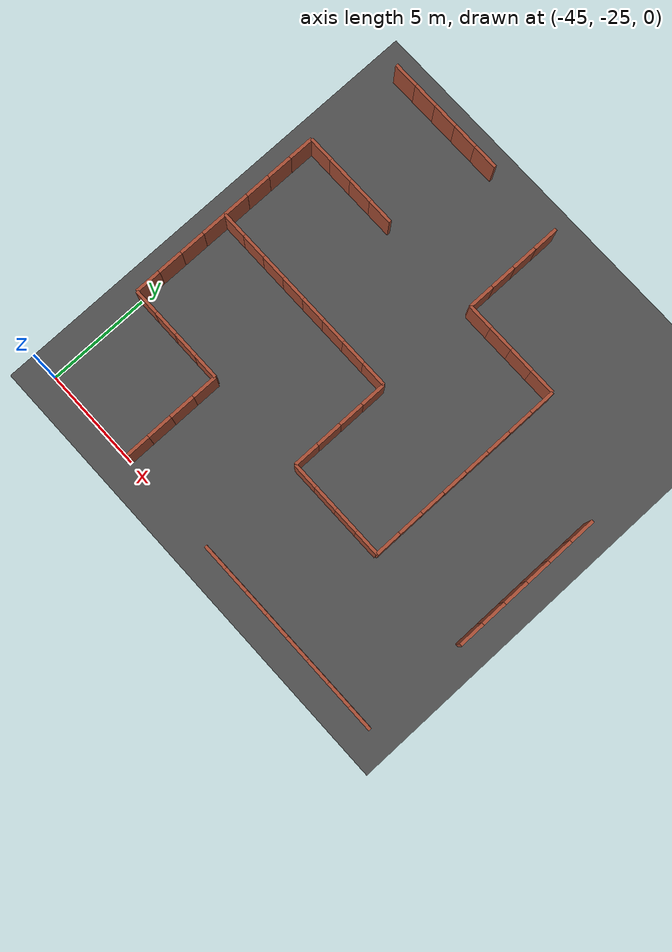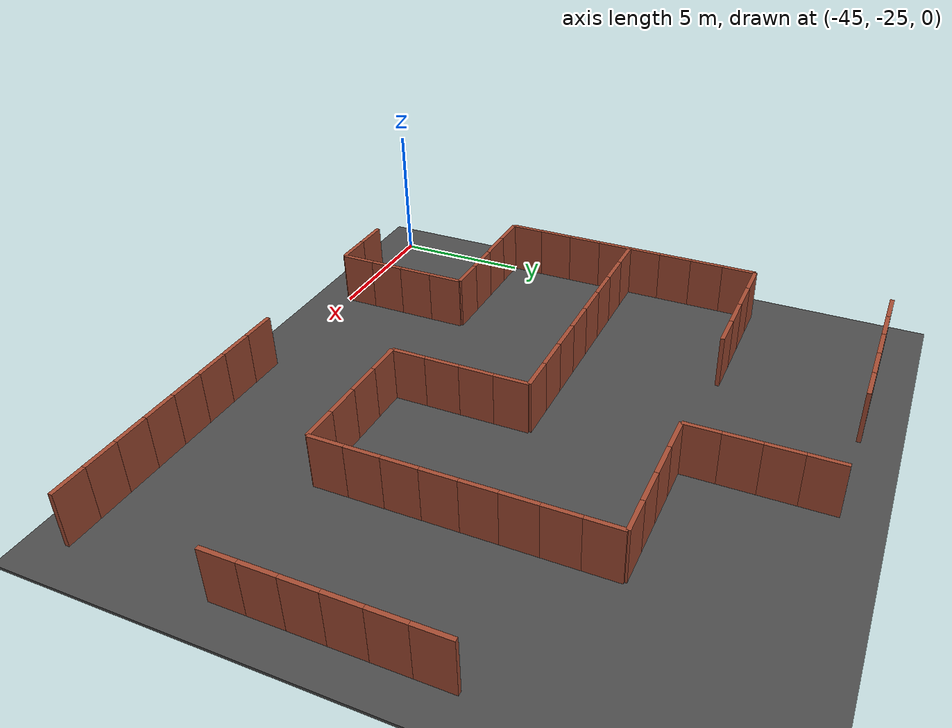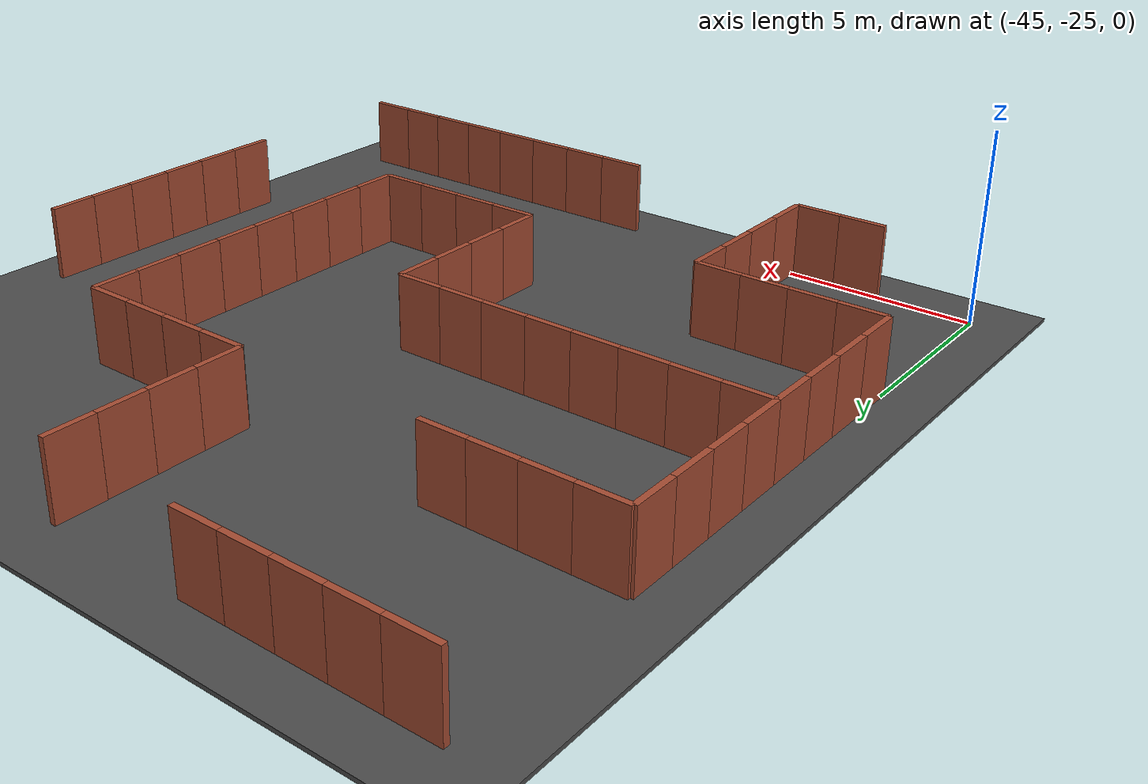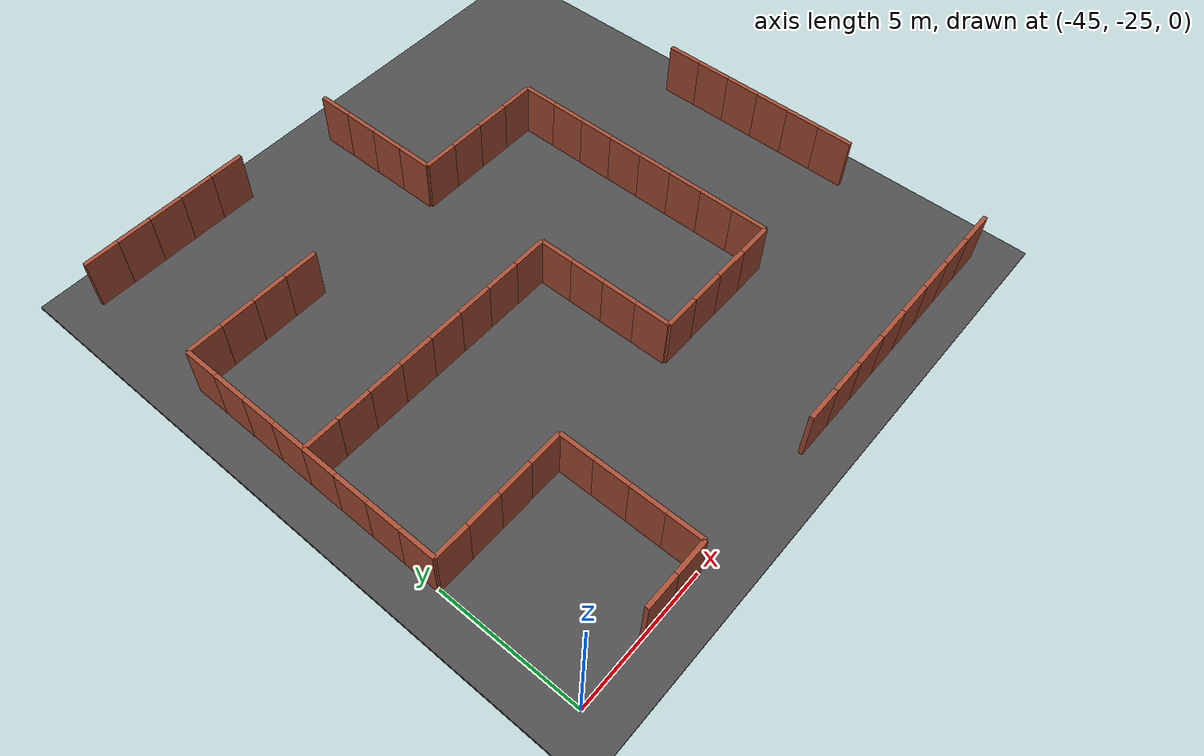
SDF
<sdf version="1.6">
 <world name="default">
  <model name="ground_plane">
   <static>1</static>
   <link name="link">
    <collision name="collision">
     <geometry><plane><normal>0 0 1</normal><size>100 100</size></plane></geometry>
     <surface><friction><ode><mu>100</mu><mu2>50</mu2></ode></friction></surface>
    </collision>
    <visual name="visual">
     <cast_shadows>0</cast_shadows>
     <geometry><plane><normal>0 0 1</normal><size>100 100</size></plane></geometry>
     <material>
      <script><uri>file://media/materials/scripts/gazebo.material</uri><name>Gazebo/Grey</name></script>
     </material>
    </visual>
   </link>
  </model>
  <model name="asphalt_plane">
   <static>1</static>
   <link name="link">
    <collision name="collision"><geometry><box><size>100 100 0.1</size></box></geometry></collision>
    <visual name="visual">
     <cast_shadows>0</cast_shadows>
     <geometry><box><size>100 100 0.1</size></box></geometry>
     <material>
      <script>
       <uri>model://asphalt_plane/materials/scripts</uri>
       <uri>model://asphalt_plane/materials/textures</uri>
       <name>vrc/asphalt</name>
      </script>
     </material>
    </visual>
   </link>
  </model>
  <model name="brick_wall_2_12_vertical1">
   <pose>-44.375 -20 0 0 -0 0</pose>
   <link name="Wall_0">
    <collision name="Wall_0_Collision">
     <geometry><box><size>1.25 0.15 2</size></box></geometry>
     <pose>0 0 1 0 -0 0</pose>
    </collision>
    <visual name="Wall_0_Visual">
     <pose>0 0 1 0 -0 0</pose>
     <geometry><box><size>1.25 0.15 2</size></box></geometry>
     <material>
      <script><uri>file://media/materials/scripts/gazebo.material</uri><name>Gazebo/Bricks</name></script>
      <ambient>1 1 1 1</ambient>
     </material>
     <meta><layer>0</layer></meta>
    </visual>
   </link>
   <static>1</static>
  </model>
  <model name="brick_wall_2_12_horizontal1">
   <pose>-45 -19.375 0 0 -0 1.5708</pose>
   <link name="Wall_0">
    <collision name="Wall_0_Collision">
     <geometry><box><size>1.25 0.15 2</size></box></geometry>
     <pose>0 0 1 0 -0 0</pose>
    </collision>
    <visual name="Wall_0_Visual">
     <pose>0 0 1 0 -0 0</pose>
     <geometry><box><size>1.25 0.15 2</size></box></geometry>
     <material>
      <script><uri>file://media/materials/scripts/gazebo.material</uri><name>Gazebo/Bricks</name></script>
      <ambient>1 1 1 1</ambient>
     </material>
     <meta><layer>0</layer></meta>
    </visual>
   </link>
   <static>1</static>
  </model>
  <model name="brick_wall_2_13_horizontal1">
   <pose>-45 -16.875 0 0 -0 1.5708</pose>
   <link name="Wall_0">
    <collision name="Wall_0_Collision">
     <geometry><box><size>1.25 0.15 2</size></box></geometry>
     <pose>0 0 1 0 -0 0</pose>
    </collision>
    <visual name="Wall_0_Visual">
     <pose>0 0 1 0 -0 0</pose>
     <geometry><box><size>1.25 0.15 2</size></box></geometry>
     <material>
      <script><uri>file://media/materials/scripts/gazebo.material</uri><name>Gazebo/Bricks</name></script>
      <ambient>1 1 1 1</ambient>
     </material>
     <meta><layer>0</layer></meta>
    </visual>
   </link>
   <static>1</static>
  </model>
  <model name="brick_wall_2_13_horizontal2">
   <pose>-45 -18.125 0 0 -0 1.5708</pose>
   <link name="Wall_0">
    <collision name="Wall_0_Collision">
     <geometry><box><size>1.25 0.15 2</size></box></geometry>
     <pose>0 0 1 0 -0 0</pose>
    </collision>
    <visual name="Wall_0_Visual">
     <pose>0 0 1 0 -0 0</pose>
     <geometry><box><size>1.25 0.15 2</size></box></geometry>
     <material>
      <script><uri>file://media/materials/scripts/gazebo.material</uri><name>Gazebo/Bricks</name></script>
      <ambient>1 1 1 1</ambient>
     </material>
     <meta><layer>0</layer></meta>
    </visual>
   </link>
   <static>1</static>
  </model>
  <model name="brick_wall_2_14_vertical1">
   <pose>-44.375 -15 0 0 -0 0</pose>
   <link name="Wall_0">
    <collision name="Wall_0_Collision">
     <geometry><box><size>1.25 0.15 2</size></box></geometry>
     <pose>0 0 1 0 -0 0</pose>
    </collision>
    <visual name="Wall_0_Visual">
     <pose>0 0 1 0 -0 0</pose>
     <geometry><box><size>1.25 0.15 2</size></box></geometry>
     <material>
      <script><uri>file://media/materials/scripts/gazebo.material</uri><name>Gazebo/Bricks</name></script>
      <ambient>1 1 1 1</ambient>
     </material>
     <meta><layer>0</layer></meta>
    </visual>
   </link>
   <static>1</static>
  </model>
  <model name="brick_wall_2_14_horizontal1">
   <pose>-45 -14.375 0 0 -0 1.5708</pose>
   <link name="Wall_0">
    <collision name="Wall_0_Collision">
     <geometry><box><size>1.25 0.15 2</size></box></geometry>
     <pose>0 0 1 0 -0 0</pose>
    </collision>
    <visual name="Wall_0_Visual">
     <pose>0 0 1 0 -0 0</pose>
     <geometry><box><size>1.25 0.15 2</size></box></geometry>
     <material>
      <script><uri>file://media/materials/scripts/gazebo.material</uri><name>Gazebo/Bricks</name></script>
      <ambient>1 1 1 1</ambient>
     </material>
     <meta><layer>0</layer></meta>
    </visual>
   </link>
   <static>1</static>
  </model>
  <model name="brick_wall_2_14_horizontal2">
   <pose>-45 -15.625 0 0 -0 1.5708</pose>
   <link name="Wall_0">
    <collision name="Wall_0_Collision">
     <geometry><box><size>1.25 0.15 2</size></box></geometry>
     <pose>0 0 1 0 -0 0</pose>
    </collision>
    <visual name="Wall_0_Visual">
     <pose>0 0 1 0 -0 0</pose>
     <geometry><box><size>1.25 0.15 2</size></box></geometry>
     <material>
      <script><uri>file://media/materials/scripts/gazebo.material</uri><name>Gazebo/Bricks</name></script>
      <ambient>1 1 1 1</ambient>
     </material>
     <meta><layer>0</layer></meta>
    </visual>
   </link>
   <static>1</static>
  </model>
  <model name="brick_wall_2_15_horizontal1">
   <pose>-45 -11.875 0 0 -0 1.5708</pose>
   <link name="Wall_0">
    <collision name="Wall_0_Collision">
     <geometry><box><size>1.25 0.15 2</size></box></geometry>
     <pose>0 0 1 0 -0 0</pose>
    </collision>
    <visual name="Wall_0_Visual">
     <pose>0 0 1 0 -0 0</pose>
     <geometry><box><size>1.25 0.15 2</size></box></geometry>
     <material>
      <script><uri>file://media/materials/scripts/gazebo.material</uri><name>Gazebo/Bricks</name></script>
      <ambient>1 1 1 1</ambient>
     </material>
     <meta><layer>0</layer></meta>
    </visual>
   </link>
   <static>1</static>
  </model>
  <model name="brick_wall_2_15_horizontal2">
   <pose>-45 -13.125 0 0 -0 1.5708</pose>
   <link name="Wall_0">
    <collision name="Wall_0_Collision">
     <geometry><box><size>1.25 0.15 2</size></box></geometry>
     <pose>0 0 1 0 -0 0</pose>
    </collision>
    <visual name="Wall_0_Visual">
     <pose>0 0 1 0 -0 0</pose>
     <geometry><box><size>1.25 0.15 2</size></box></geometry>
     <material>
      <script><uri>file://media/materials/scripts/gazebo.material</uri><name>Gazebo/Bricks</name></script>
      <ambient>1 1 1 1</ambient>
     </material>
     <meta><layer>0</layer></meta>
    </visual>
   </link>
   <static>1</static>
  </model>
  <model name="brick_wall_2_16_vertical1">
   <pose>-44.375 -10 0 0 -0 0</pose>
   <link name="Wall_0">
    <collision name="Wall_0_Collision">
     <geometry><box><size>1.25 0.15 2</size></box></geometry>
     <pose>0 0 1 0 -0 0</pose>
    </collision>
    <visual name="Wall_0_Visual">
     <pose>0 0 1 0 -0 0</pose>
     <geometry><box><size>1.25 0.15 2</size></box></geometry>
     <material>
      <script><uri>file://media/materials/scripts/gazebo.material</uri><name>Gazebo/Bricks</name></script>
      <ambient>1 1 1 1</ambient>
     </material>
     <meta><layer>0</layer></meta>
    </visual>
   </link>
   <static>1</static>
  </model>
  <model name="brick_wall_2_16_horizontal2">
   <pose>-45 -10.625 0 0 -0 1.5708</pose>
   <link name="Wall_0">
    <collision name="Wall_0_Collision">
     <geometry><box><size>1.25 0.15 2</size></box></geometry>
     <pose>0 0 1 0 -0 0</pose>
    </collision>
    <visual name="Wall_0_Visual">
     <pose>0 0 1 0 -0 0</pose>
     <geometry><box><size>1.25 0.15 2</size></box></geometry>
     <material>
      <script><uri>file://media/materials/scripts/gazebo.material</uri><name>Gazebo/Bricks</name></script>
      <ambient>1 1 1 1</ambient>
     </material>
     <meta><layer>0</layer></meta>
    </visual>
   </link>
   <static>1</static>
  </model>
  <model name="brick_wall_2_18_vertical1">
   <pose>-44.375 -5 0 0 -0 0</pose>
   <link name="Wall_0">
    <collision name="Wall_0_Collision">
     <geometry><box><size>1.25 0.15 2</size></box></geometry>
     <pose>0 0 1 0 -0 0</pose>
    </collision>
    <visual name="Wall_0_Visual">
     <pose>0 0 1 0 -0 0</pose>
     <geometry><box><size>1.25 0.15 2</size></box></geometry>
     <material>
      <script><uri>file://media/materials/scripts/gazebo.material</uri><name>Gazebo/Bricks</name></script>
      <ambient>1 1 1 1</ambient>
     </material>
     <meta><layer>0</layer></meta>
    </visual>
   </link>
   <static>1</static>
  </model>
  <model name="brick_wall_3_10_vertical1">
   <pose>-41.875 -25 0 0 -0 0</pose>
   <link name="Wall_0">
    <collision name="Wall_0_Collision">
     <geometry><box><size>1.25 0.15 2</size></box></geometry>
     <pose>0 0 1 0 -0 0</pose>
    </collision>
    <visual name="Wall_0_Visual">
     <pose>0 0 1 0 -0 0</pose>
     <geometry><box><size>1.25 0.15 2</size></box></geometry>
     <material>
      <script><uri>file://media/materials/scripts/gazebo.material</uri><name>Gazebo/Bricks</name></script>
      <ambient>1 1 1 1</ambient>
     </material>
     <meta><layer>0</layer></meta>
    </visual>
   </link>
   <static>1</static>
  </model>
  <model name="brick_wall_3_12_vertical1">
   <pose>-41.875 -20 0 0 -0 0</pose>
   <link name="Wall_0">
    <collision name="Wall_0_Collision">
     <geometry><box><size>1.25 0.15 2</size></box></geometry>
     <pose>0 0 1 0 -0 0</pose>
    </collision>
    <visual name="Wall_0_Visual">
     <pose>0 0 1 0 -0 0</pose>
     <geometry><box><size>1.25 0.15 2</size></box></geometry>
     <material>
      <script><uri>file://media/materials/scripts/gazebo.material</uri><name>Gazebo/Bricks</name></script>
      <ambient>1 1 1 1</ambient>
     </material>
     <meta><layer>0</layer></meta>
    </visual>
   </link>
   <static>1</static>
  </model>
  <model name="brick_wall_3_12_vertical2">
   <pose>-43.125 -20 0 0 -0 0</pose>
   <link name="Wall_0">
    <collision name="Wall_0_Collision">
     <geometry><box><size>1.25 0.15 2</size></box></geometry>
     <pose>0 0 1 0 -0 0</pose>
    </collision>
    <visual name="Wall_0_Visual">
     <pose>0 0 1 0 -0 0</pose>
     <geometry><box><size>1.25 0.15 2</size></box></geometry>
     <material>
      <script><uri>file://media/materials/scripts/gazebo.material</uri><name>Gazebo/Bricks</name></script>
      <ambient>1 1 1 1</ambient>
     </material>
     <meta><layer>0</layer></meta>
    </visual>
   </link>
   <static>1</static>
  </model>
  <model name="brick_wall_3_14_vertical1">
   <pose>-41.875 -15 0 0 -0 0</pose>
   <link name="Wall_0">
    <collision name="Wall_0_Collision">
     <geometry><box><size>1.25 0.15 2</size></box></geometry>
     <pose>0 0 1 0 -0 0</pose>
    </collision>
    <visual name="Wall_0_Visual">
     <pose>0 0 1 0 -0 0</pose>
     <geometry><box><size>1.25 0.15 2</size></box></geometry>
     <material>
      <script><uri>file://media/materials/scripts/gazebo.material</uri><name>Gazebo/Bricks</name></script>
      <ambient>1 1 1 1</ambient>
     </material>
     <meta><layer>0</layer></meta>
    </visual>
   </link>
   <static>1</static>
  </model>
  <model name="brick_wall_3_14_vertical2">
   <pose>-43.125 -15 0 0 -0 0</pose>
   <link name="Wall_0">
    <collision name="Wall_0_Collision">
     <geometry><box><size>1.25 0.15 2</size></box></geometry>
     <pose>0 0 1 0 -0 0</pose>
    </collision>
    <visual name="Wall_0_Visual">
     <pose>0 0 1 0 -0 0</pose>
     <geometry><box><size>1.25 0.15 2</size></box></geometry>
     <material>
      <script><uri>file://media/materials/scripts/gazebo.material</uri><name>Gazebo/Bricks</name></script>
      <ambient>1 1 1 1</ambient>
     </material>
     <meta><layer>0</layer></meta>
    </visual>
   </link>
   <static>1</static>
  </model>
  <model name="brick_wall_3_16_vertical1">
   <pose>-41.875 -10 0 0 -0 0</pose>
   <link name="Wall_0">
    <collision name="Wall_0_Collision">
     <geometry><box><size>1.25 0.15 2</size></box></geometry>
     <pose>0 0 1 0 -0 0</pose>
    </collision>
    <visual name="Wall_0_Visual">
     <pose>0 0 1 0 -0 0</pose>
     <geometry><box><size>1.25 0.15 2</size></box></geometry>
     <material>
      <script><uri>file://media/materials/scripts/gazebo.material</uri><name>Gazebo/Bricks</name></script>
      <ambient>1 1 1 1</ambient>
     </material>
     <meta><layer>0</layer></meta>
    </visual>
   </link>
   <static>1</static>
  </model>
  <model name="brick_wall_3_16_vertical2">
   <pose>-43.125 -10 0 0 -0 0</pose>
   <link name="Wall_0">
    <collision name="Wall_0_Collision">
     <geometry><box><size>1.25 0.15 2</size></box></geometry>
     <pose>0 0 1 0 -0 0</pose>
    </collision>
    <visual name="Wall_0_Visual">
     <pose>0 0 1 0 -0 0</pose>
     <geometry><box><size>1.25 0.15 2</size></box></geometry>
     <material>
      <script><uri>file://media/materials/scripts/gazebo.material</uri><name>Gazebo/Bricks</name></script>
      <ambient>1 1 1 1</ambient>
     </material>
     <meta><layer>0</layer></meta>
    </visual>
   </link>
   <static>1</static>
  </model>
  <model name="brick_wall_3_18_vertical1">
   <pose>-41.875 -5 0 0 -0 0</pose>
   <link name="Wall_0">
    <collision name="Wall_0_Collision">
     <geometry><box><size>1.25 0.15 2</size></box></geometry>
     <pose>0 0 1 0 -0 0</pose>
    </collision>
    <visual name="Wall_0_Visual">
     <pose>0 0 1 0 -0 0</pose>
     <geometry><box><size>1.25 0.15 2</size></box></geometry>
     <material>
      <script><uri>file://media/materials/scripts/gazebo.material</uri><name>Gazebo/Bricks</name></script>
      <ambient>1 1 1 1</ambient>
     </material>
     <meta><layer>0</layer></meta>
    </visual>
   </link>
   <static>1</static>
  </model>
  <model name="brick_wall_3_18_vertical2">
   <pose>-43.125 -5 0 0 -0 0</pose>
   <link name="Wall_0">
    <collision name="Wall_0_Collision">
     <geometry><box><size>1.25 0.15 2</size></box></geometry>
     <pose>0 0 1 0 -0 0</pose>
    </collision>
    <visual name="Wall_0_Visual">
     <pose>0 0 1 0 -0 0</pose>
     <geometry><box><size>1.25 0.15 2</size></box></geometry>
     <material>
      <script><uri>file://media/materials/scripts/gazebo.material</uri><name>Gazebo/Bricks</name></script>
      <ambient>1 1 1 1</ambient>
     </material>
     <meta><layer>0</layer></meta>
    </visual>
   </link>
   <static>1</static>
  </model>
  <model name="brick_wall_4_10_vertical2">
   <pose>-40.625 -25 0 0 -0 0</pose>
   <link name="Wall_0">
    <collision name="Wall_0_Collision">
     <geometry><box><size>1.25 0.15 2</size></box></geometry>
     <pose>0 0 1 0 -0 0</pose>
    </collision>
    <visual name="Wall_0_Visual">
     <pose>0 0 1 0 -0 0</pose>
     <geometry><box><size>1.25 0.15 2</size></box></geometry>
     <material>
      <script><uri>file://media/materials/scripts/gazebo.material</uri><name>Gazebo/Bricks</name></script>
      <ambient>1 1 1 1</ambient>
     </material>
     <meta><layer>0</layer></meta>
    </visual>
   </link>
   <static>1</static>
  </model>
  <model name="brick_wall_4_10_horizontal1">
   <pose>-40 -24.375 0 0 -0 1.5708</pose>
   <link name="Wall_0">
    <collision name="Wall_0_Collision">
     <geometry><box><size>1.25 0.15 2</size></box></geometry>
     <pose>0 0 1 0 -0 0</pose>
    </collision>
    <visual name="Wall_0_Visual">
     <pose>0 0 1 0 -0 0</pose>
     <geometry><box><size>1.25 0.15 2</size></box></geometry>
     <material>
      <script><uri>file://media/materials/scripts/gazebo.material</uri><name>Gazebo/Bricks</name></script>
      <ambient>1 1 1 1</ambient>
     </material>
     <meta><layer>0</layer></meta>
    </visual>
   </link>
   <static>1</static>
  </model>
  <model name="brick_wall_4_11_horizontal1">
   <pose>-40 -21.875 0 0 -0 1.5708</pose>
   <link name="Wall_0">
    <collision name="Wall_0_Collision">
     <geometry><box><size>1.25 0.15 2</size></box></geometry>
     <pose>0 0 1 0 -0 0</pose>
    </collision>
    <visual name="Wall_0_Visual">
     <pose>0 0 1 0 -0 0</pose>
     <geometry><box><size>1.25 0.15 2</size></box></geometry>
     <material>
      <script><uri>file://media/materials/scripts/gazebo.material</uri><name>Gazebo/Bricks</name></script>
      <ambient>1 1 1 1</ambient>
     </material>
     <meta><layer>0</layer></meta>
    </visual>
   </link>
   <static>1</static>
  </model>
  <model name="brick_wall_4_11_horizontal2">
   <pose>-40 -23.125 0 0 -0 1.5708</pose>
   <link name="Wall_0">
    <collision name="Wall_0_Collision">
     <geometry><box><size>1.25 0.15 2</size></box></geometry>
     <pose>0 0 1 0 -0 0</pose>
    </collision>
    <visual name="Wall_0_Visual">
     <pose>0 0 1 0 -0 0</pose>
     <geometry><box><size>1.25 0.15 2</size></box></geometry>
     <material>
      <script><uri>file://media/materials/scripts/gazebo.material</uri><name>Gazebo/Bricks</name></script>
      <ambient>1 1 1 1</ambient>
     </material>
     <meta><layer>0</layer></meta>
    </visual>
   </link>
   <static>1</static>
  </model>
  <model name="brick_wall_4_12_vertical2">
   <pose>-40.625 -20 0 0 -0 0</pose>
   <link name="Wall_0">
    <collision name="Wall_0_Collision">
     <geometry><box><size>1.25 0.15 2</size></box></geometry>
     <pose>0 0 1 0 -0 0</pose>
    </collision>
    <visual name="Wall_0_Visual">
     <pose>0 0 1 0 -0 0</pose>
     <geometry><box><size>1.25 0.15 2</size></box></geometry>
     <material>
      <script><uri>file://media/materials/scripts/gazebo.material</uri><name>Gazebo/Bricks</name></script>
      <ambient>1 1 1 1</ambient>
     </material>
     <meta><layer>0</layer></meta>
    </visual>
   </link>
   <static>1</static>
  </model>
  <model name="brick_wall_4_12_horizontal2">
   <pose>-40 -20.625 0 0 -0 1.5708</pose>
   <link name="Wall_0">
    <collision name="Wall_0_Collision">
     <geometry><box><size>1.25 0.15 2</size></box></geometry>
     <pose>0 0 1 0 -0 0</pose>
    </collision>
    <visual name="Wall_0_Visual">
     <pose>0 0 1 0 -0 0</pose>
     <geometry><box><size>1.25 0.15 2</size></box></geometry>
     <material>
      <script><uri>file://media/materials/scripts/gazebo.material</uri><name>Gazebo/Bricks</name></script>
      <ambient>1 1 1 1</ambient>
     </material>
     <meta><layer>0</layer></meta>
    </visual>
   </link>
   <static>1</static>
  </model>
  <model name="brick_wall_4_14_vertical1">
   <pose>-39.375 -15 0 0 -0 0</pose>
   <link name="Wall_0">
    <collision name="Wall_0_Collision">
     <geometry><box><size>1.25 0.15 2</size></box></geometry>
     <pose>0 0 1 0 -0 0</pose>
    </collision>
    <visual name="Wall_0_Visual">
     <pose>0 0 1 0 -0 0</pose>
     <geometry><box><size>1.25 0.15 2</size></box></geometry>
     <material>
      <script><uri>file://media/materials/scripts/gazebo.material</uri><name>Gazebo/Bricks</name></script>
      <ambient>1 1 1 1</ambient>
     </material>
     <meta><layer>0</layer></meta>
    </visual>
   </link>
   <static>1</static>
  </model>
  <model name="brick_wall_4_14_vertical2">
   <pose>-40.625 -15 0 0 -0 0</pose>
   <link name="Wall_0">
    <collision name="Wall_0_Collision">
     <geometry><box><size>1.25 0.15 2</size></box></geometry>
     <pose>0 0 1 0 -0 0</pose>
    </collision>
    <visual name="Wall_0_Visual">
     <pose>0 0 1 0 -0 0</pose>
     <geometry><box><size>1.25 0.15 2</size></box></geometry>
     <material>
      <script><uri>file://media/materials/scripts/gazebo.material</uri><name>Gazebo/Bricks</name></script>
      <ambient>1 1 1 1</ambient>
     </material>
     <meta><layer>0</layer></meta>
    </visual>
   </link>
   <static>1</static>
  </model>
  <model name="brick_wall_4_16_vertical2">
   <pose>-40.625 -10 0 0 -0 0</pose>
   <link name="Wall_0">
    <collision name="Wall_0_Collision">
     <geometry><box><size>1.25 0.15 2</size></box></geometry>
     <pose>0 0 1 0 -0 0</pose>
    </collision>
    <visual name="Wall_0_Visual">
     <pose>0 0 1 0 -0 0</pose>
     <geometry><box><size>1.25 0.15 2</size></box></geometry>
     <material>
      <script><uri>file://media/materials/scripts/gazebo.material</uri><name>Gazebo/Bricks</name></script>
      <ambient>1 1 1 1</ambient>
     </material>
     <meta><layer>0</layer></meta>
    </visual>
   </link>
   <static>1</static>
  </model>
  <model name="brick_wall_4_18_vertical1">
   <pose>-39.375 -5 0 0 -0 0</pose>
   <link name="Wall_0">
    <collision name="Wall_0_Collision">
     <geometry><box><size>1.25 0.15 2</size></box></geometry>
     <pose>0 0 1 0 -0 0</pose>
    </collision>
    <visual name="Wall_0_Visual">
     <pose>0 0 1 0 -0 0</pose>
     <geometry><box><size>1.25 0.15 2</size></box></geometry>
     <material>
      <script><uri>file://media/materials/scripts/gazebo.material</uri><name>Gazebo/Bricks</name></script>
      <ambient>1 1 1 1</ambient>
     </material>
     <meta><layer>0</layer></meta>
    </visual>
   </link>
   <static>1</static>
  </model>
  <model name="brick_wall_4_18_vertical2">
   <pose>-40.625 -5 0 0 -0 0</pose>
   <link name="Wall_0">
    <collision name="Wall_0_Collision">
     <geometry><box><size>1.25 0.15 2</size></box></geometry>
     <pose>0 0 1 0 -0 0</pose>
    </collision>
    <visual name="Wall_0_Visual">
     <pose>0 0 1 0 -0 0</pose>
     <geometry><box><size>1.25 0.15 2</size></box></geometry>
     <material>
      <script><uri>file://media/materials/scripts/gazebo.material</uri><name>Gazebo/Bricks</name></script>
      <ambient>1 1 1 1</ambient>
     </material>
     <meta><layer>0</layer></meta>
    </visual>
   </link>
   <static>1</static>
  </model>
  <model name="brick_wall_5_14_vertical1">
   <pose>-36.875 -15 0 0 -0 0</pose>
   <link name="Wall_0">
    <collision name="Wall_0_Collision">
     <geometry><box><size>1.25 0.15 2</size></box></geometry>
     <pose>0 0 1 0 -0 0</pose>
    </collision>
    <visual name="Wall_0_Visual">
     <pose>0 0 1 0 -0 0</pose>
     <geometry><box><size>1.25 0.15 2</size></box></geometry>
     <material>
      <script><uri>file://media/materials/scripts/gazebo.material</uri><name>Gazebo/Bricks</name></script>
      <ambient>1 1 1 1</ambient>
     </material>
     <meta><layer>0</layer></meta>
    </visual>
   </link>
   <static>1</static>
  </model>
  <model name="brick_wall_5_14_vertical2">
   <pose>-38.125 -15 0 0 -0 0</pose>
   <link name="Wall_0">
    <collision name="Wall_0_Collision">
     <geometry><box><size>1.25 0.15 2</size></box></geometry>
     <pose>0 0 1 0 -0 0</pose>
    </collision>
    <visual name="Wall_0_Visual">
     <pose>0 0 1 0 -0 0</pose>
     <geometry><box><size>1.25 0.15 2</size></box></geometry>
     <material>
      <script><uri>file://media/materials/scripts/gazebo.material</uri><name>Gazebo/Bricks</name></script>
      <ambient>1 1 1 1</ambient>
     </material>
     <meta><layer>0</layer></meta>
    </visual>
   </link>
   <static>1</static>
  </model>
  <model name="brick_wall_6_10_vertical1">
   <pose>-34.375 -25 0 0 -0 0</pose>
   <link name="Wall_0">
    <collision name="Wall_0_Collision">
     <geometry><box><size>1.25 0.15 2</size></box></geometry>
     <pose>0 0 1 0 -0 0</pose>
    </collision>
    <visual name="Wall_0_Visual">
     <pose>0 0 1 0 -0 0</pose>
     <geometry><box><size>1.25 0.15 2</size></box></geometry>
     <material>
      <script><uri>file://media/materials/scripts/gazebo.material</uri><name>Gazebo/Bricks</name></script>
      <ambient>1 1 1 1</ambient>
     </material>
     <meta><layer>0</layer></meta>
    </visual>
   </link>
   <static>1</static>
  </model>
  <model name="brick_wall_6_12_vertical1">
   <pose>-34.375 -20 0 0 -0 0</pose>
   <link name="Wall_0">
    <collision name="Wall_0_Collision">
     <geometry><box><size>1.25 0.15 2</size></box></geometry>
     <pose>0 0 1 0 -0 0</pose>
    </collision>
    <visual name="Wall_0_Visual">
     <pose>0 0 1 0 -0 0</pose>
     <geometry><box><size>1.25 0.15 2</size></box></geometry>
     <material>
      <script><uri>file://media/materials/scripts/gazebo.material</uri><name>Gazebo/Bricks</name></script>
      <ambient>1 1 1 1</ambient>
     </material>
     <meta><layer>0</layer></meta>
    </visual>
   </link>
   <static>1</static>
  </model>
  <model name="brick_wall_6_12_horizontal1">
   <pose>-35 -19.375 0 0 -0 1.5708</pose>
   <link name="Wall_0">
    <collision name="Wall_0_Collision">
     <geometry><box><size>1.25 0.15 2</size></box></geometry>
     <pose>0 0 1 0 -0 0</pose>
    </collision>
    <visual name="Wall_0_Visual">
     <pose>0 0 1 0 -0 0</pose>
     <geometry><box><size>1.25 0.15 2</size></box></geometry>
     <material>
      <script><uri>file://media/materials/scripts/gazebo.material</uri><name>Gazebo/Bricks</name></script>
      <ambient>1 1 1 1</ambient>
     </material>
     <meta><layer>0</layer></meta>
    </visual>
   </link>
   <static>1</static>
  </model>
  <model name="brick_wall_6_13_horizontal1">
   <pose>-35 -16.875 0 0 -0 1.5708</pose>
   <link name="Wall_0">
    <collision name="Wall_0_Collision">
     <geometry><box><size>1.25 0.15 2</size></box></geometry>
     <pose>0 0 1 0 -0 0</pose>
    </collision>
    <visual name="Wall_0_Visual">
     <pose>0 0 1 0 -0 0</pose>
     <geometry><box><size>1.25 0.15 2</size></box></geometry>
     <material>
      <script><uri>file://media/materials/scripts/gazebo.material</uri><name>Gazebo/Bricks</name></script>
      <ambient>1 1 1 1</ambient>
     </material>
     <meta><layer>0</layer></meta>
    </visual>
   </link>
   <static>1</static>
  </model>
  <model name="brick_wall_6_13_horizontal2">
   <pose>-35 -18.125 0 0 -0 1.5708</pose>
   <link name="Wall_0">
    <collision name="Wall_0_Collision">
     <geometry><box><size>1.25 0.15 2</size></box></geometry>
     <pose>0 0 1 0 -0 0</pose>
    </collision>
    <visual name="Wall_0_Visual">
     <pose>0 0 1 0 -0 0</pose>
     <geometry><box><size>1.25 0.15 2</size></box></geometry>
     <material>
      <script><uri>file://media/materials/scripts/gazebo.material</uri><name>Gazebo/Bricks</name></script>
      <ambient>1 1 1 1</ambient>
     </material>
     <meta><layer>0</layer></meta>
    </visual>
   </link>
   <static>1</static>
  </model>
  <model name="brick_wall_6_14_vertical2">
   <pose>-35.625 -15 0 0 -0 0</pose>
   <link name="Wall_0">
    <collision name="Wall_0_Collision">
     <geometry><box><size>1.25 0.15 2</size></box></geometry>
     <pose>0 0 1 0 -0 0</pose>
    </collision>
    <visual name="Wall_0_Visual">
     <pose>0 0 1 0 -0 0</pose>
     <geometry><box><size>1.25 0.15 2</size></box></geometry>
     <material>
      <script><uri>file://media/materials/scripts/gazebo.material</uri><name>Gazebo/Bricks</name></script>
      <ambient>1 1 1 1</ambient>
     </material>
     <meta><layer>0</layer></meta>
    </visual>
   </link>
   <static>1</static>
  </model>
  <model name="brick_wall_6_14_horizontal2">
   <pose>-35 -15.625 0 0 -0 1.5708</pose>
   <link name="Wall_0">
    <collision name="Wall_0_Collision">
     <geometry><box><size>1.25 0.15 2</size></box></geometry>
     <pose>0 0 1 0 -0 0</pose>
    </collision>
    <visual name="Wall_0_Visual">
     <pose>0 0 1 0 -0 0</pose>
     <geometry><box><size>1.25 0.15 2</size></box></geometry>
     <material>
      <script><uri>file://media/materials/scripts/gazebo.material</uri><name>Gazebo/Bricks</name></script>
      <ambient>1 1 1 1</ambient>
     </material>
     <meta><layer>0</layer></meta>
    </visual>
   </link>
   <static>1</static>
  </model>
  <model name="brick_wall_6_16_vertical1">
   <pose>-34.375 -10 0 0 -0 0</pose>
   <link name="Wall_0">
    <collision name="Wall_0_Collision">
     <geometry><box><size>1.25 0.15 2</size></box></geometry>
     <pose>0 0 1 0 -0 0</pose>
    </collision>
    <visual name="Wall_0_Visual">
     <pose>0 0 1 0 -0 0</pose>
     <geometry><box><size>1.25 0.15 2</size></box></geometry>
     <material>
      <script><uri>file://media/materials/scripts/gazebo.material</uri><name>Gazebo/Bricks</name></script>
      <ambient>1 1 1 1</ambient>
     </material>
     <meta><layer>0</layer></meta>
    </visual>
   </link>
   <static>1</static>
  </model>
  <model name="brick_wall_6_16_horizontal1">
   <pose>-35 -9.375 0 0 -0 1.5708</pose>
   <link name="Wall_0">
    <collision name="Wall_0_Collision">
     <geometry><box><size>1.25 0.15 2</size></box></geometry>
     <pose>0 0 1 0 -0 0</pose>
    </collision>
    <visual name="Wall_0_Visual">
     <pose>0 0 1 0 -0 0</pose>
     <geometry><box><size>1.25 0.15 2</size></box></geometry>
     <material>
      <script><uri>file://media/materials/scripts/gazebo.material</uri><name>Gazebo/Bricks</name></script>
      <ambient>1 1 1 1</ambient>
     </material>
     <meta><layer>0</layer></meta>
    </visual>
   </link>
   <static>1</static>
  </model>
  <model name="brick_wall_6_17_horizontal1">
   <pose>-35 -6.875 0 0 -0 1.5708</pose>
   <link name="Wall_0">
    <collision name="Wall_0_Collision">
     <geometry><box><size>1.25 0.15 2</size></box></geometry>
     <pose>0 0 1 0 -0 0</pose>
    </collision>
    <visual name="Wall_0_Visual">
     <pose>0 0 1 0 -0 0</pose>
     <geometry><box><size>1.25 0.15 2</size></box></geometry>
     <material>
      <script><uri>file://media/materials/scripts/gazebo.material</uri><name>Gazebo/Bricks</name></script>
      <ambient>1 1 1 1</ambient>
     </material>
     <meta><layer>0</layer></meta>
    </visual>
   </link>
   <static>1</static>
  </model>
  <model name="brick_wall_6_17_horizontal2">
   <pose>-35 -8.125 0 0 -0 1.5708</pose>
   <link name="Wall_0">
    <collision name="Wall_0_Collision">
     <geometry><box><size>1.25 0.15 2</size></box></geometry>
     <pose>0 0 1 0 -0 0</pose>
    </collision>
    <visual name="Wall_0_Visual">
     <pose>0 0 1 0 -0 0</pose>
     <geometry><box><size>1.25 0.15 2</size></box></geometry>
     <material>
      <script><uri>file://media/materials/scripts/gazebo.material</uri><name>Gazebo/Bricks</name></script>
      <ambient>1 1 1 1</ambient>
     </material>
     <meta><layer>0</layer></meta>
    </visual>
   </link>
   <static>1</static>
  </model>
  <model name="brick_wall_6_18_horizontal2">
   <pose>-35 -5.625 0 0 -0 1.5708</pose>
   <link name="Wall_0">
    <collision name="Wall_0_Collision">
     <geometry><box><size>1.25 0.15 2</size></box></geometry>
     <pose>0 0 1 0 -0 0</pose>
    </collision>
    <visual name="Wall_0_Visual">
     <pose>0 0 1 0 -0 0</pose>
     <geometry><box><size>1.25 0.15 2</size></box></geometry>
     <material>
      <script><uri>file://media/materials/scripts/gazebo.material</uri><name>Gazebo/Bricks</name></script>
      <ambient>1 1 1 1</ambient>
     </material>
     <meta><layer>0</layer></meta>
    </visual>
   </link>
   <static>1</static>
  </model>
  <model name="brick_wall_7_10_vertical1">
   <pose>-31.875 -25 0 0 -0 0</pose>
   <link name="Wall_0">
    <collision name="Wall_0_Collision">
     <geometry><box><size>1.25 0.15 2</size></box></geometry>
     <pose>0 0 1 0 -0 0</pose>
    </collision>
    <visual name="Wall_0_Visual">
     <pose>0 0 1 0 -0 0</pose>
     <geometry><box><size>1.25 0.15 2</size></box></geometry>
     <material>
      <script><uri>file://media/materials/scripts/gazebo.material</uri><name>Gazebo/Bricks</name></script>
      <ambient>1 1 1 1</ambient>
     </material>
     <meta><layer>0</layer></meta>
    </visual>
   </link>
   <static>1</static>
  </model>
  <model name="brick_wall_7_10_vertical2">
   <pose>-33.125 -25 0 0 -0 0</pose>
   <link name="Wall_0">
    <collision name="Wall_0_Collision">
     <geometry><box><size>1.25 0.15 2</size></box></geometry>
     <pose>0 0 1 0 -0 0</pose>
    </collision>
    <visual name="Wall_0_Visual">
     <pose>0 0 1 0 -0 0</pose>
     <geometry><box><size>1.25 0.15 2</size></box></geometry>
     <material>
      <script><uri>file://media/materials/scripts/gazebo.material</uri><name>Gazebo/Bricks</name></script>
      <ambient>1 1 1 1</ambient>
     </material>
     <meta><layer>0</layer></meta>
    </visual>
   </link>
   <static>1</static>
  </model>
  <model name="brick_wall_7_12_vertical1">
   <pose>-31.875 -20 0 0 -0 0</pose>
   <link name="Wall_0">
    <collision name="Wall_0_Collision">
     <geometry><box><size>1.25 0.15 2</size></box></geometry>
     <pose>0 0 1 0 -0 0</pose>
    </collision>
    <visual name="Wall_0_Visual">
     <pose>0 0 1 0 -0 0</pose>
     <geometry><box><size>1.25 0.15 2</size></box></geometry>
     <material>
      <script><uri>file://media/materials/scripts/gazebo.material</uri><name>Gazebo/Bricks</name></script>
      <ambient>1 1 1 1</ambient>
     </material>
     <meta><layer>0</layer></meta>
    </visual>
   </link>
   <static>1</static>
  </model>
  <model name="brick_wall_7_12_vertical2">
   <pose>-33.125 -20 0 0 -0 0</pose>
   <link name="Wall_0">
    <collision name="Wall_0_Collision">
     <geometry><box><size>1.25 0.15 2</size></box></geometry>
     <pose>0 0 1 0 -0 0</pose>
    </collision>
    <visual name="Wall_0_Visual">
     <pose>0 0 1 0 -0 0</pose>
     <geometry><box><size>1.25 0.15 2</size></box></geometry>
     <material>
      <script><uri>file://media/materials/scripts/gazebo.material</uri><name>Gazebo/Bricks</name></script>
      <ambient>1 1 1 1</ambient>
     </material>
     <meta><layer>0</layer></meta>
    </visual>
   </link>
   <static>1</static>
  </model>
  <model name="brick_wall_7_16_vertical1">
   <pose>-31.875 -10 0 0 -0 0</pose>
   <link name="Wall_0">
    <collision name="Wall_0_Collision">
     <geometry><box><size>1.25 0.15 2</size></box></geometry>
     <pose>0 0 1 0 -0 0</pose>
    </collision>
    <visual name="Wall_0_Visual">
     <pose>0 0 1 0 -0 0</pose>
     <geometry><box><size>1.25 0.15 2</size></box></geometry>
     <material>
      <script><uri>file://media/materials/scripts/gazebo.material</uri><name>Gazebo/Bricks</name></script>
      <ambient>1 1 1 1</ambient>
     </material>
     <meta><layer>0</layer></meta>
    </visual>
   </link>
   <static>1</static>
  </model>
  <model name="brick_wall_7_16_vertical2">
   <pose>-33.125 -10 0 0 -0 0</pose>
   <link name="Wall_0">
    <collision name="Wall_0_Collision">
     <geometry><box><size>1.25 0.15 2</size></box></geometry>
     <pose>0 0 1 0 -0 0</pose>
    </collision>
    <visual name="Wall_0_Visual">
     <pose>0 0 1 0 -0 0</pose>
     <geometry><box><size>1.25 0.15 2</size></box></geometry>
     <material>
      <script><uri>file://media/materials/scripts/gazebo.material</uri><name>Gazebo/Bricks</name></script>
      <ambient>1 1 1 1</ambient>
     </material>
     <meta><layer>0</layer></meta>
    </visual>
   </link>
   <static>1</static>
  </model>
  <model name="brick_wall_8_10_vertical1">
   <pose>-29.375 -25 0 0 -0 0</pose>
   <link name="Wall_0">
    <collision name="Wall_0_Collision">
     <geometry><box><size>1.25 0.15 2</size></box></geometry>
     <pose>0 0 1 0 -0 0</pose>
    </collision>
    <visual name="Wall_0_Visual">
     <pose>0 0 1 0 -0 0</pose>
     <geometry><box><size>1.25 0.15 2</size></box></geometry>
     <material>
      <script><uri>file://media/materials/scripts/gazebo.material</uri><name>Gazebo/Bricks</name></script>
      <ambient>1 1 1 1</ambient>
     </material>
     <meta><layer>0</layer></meta>
    </visual>
   </link>
   <static>1</static>
  </model>
  <model name="brick_wall_8_10_vertical2">
   <pose>-30.625 -25 0 0 -0 0</pose>
   <link name="Wall_0">
    <collision name="Wall_0_Collision">
     <geometry><box><size>1.25 0.15 2</size></box></geometry>
     <pose>0 0 1 0 -0 0</pose>
    </collision>
    <visual name="Wall_0_Visual">
     <pose>0 0 1 0 -0 0</pose>
     <geometry><box><size>1.25 0.15 2</size></box></geometry>
     <material>
      <script><uri>file://media/materials/scripts/gazebo.material</uri><name>Gazebo/Bricks</name></script>
      <ambient>1 1 1 1</ambient>
     </material>
     <meta><layer>0</layer></meta>
    </visual>
   </link>
   <static>1</static>
  </model>
  <model name="brick_wall_8_12_vertical2">
   <pose>-30.625 -20 0 0 -0 0</pose>
   <link name="Wall_0">
    <collision name="Wall_0_Collision">
     <geometry><box><size>1.25 0.15 2</size></box></geometry>
     <pose>0 0 1 0 -0 0</pose>
    </collision>
    <visual name="Wall_0_Visual">
     <pose>0 0 1 0 -0 0</pose>
     <geometry><box><size>1.25 0.15 2</size></box></geometry>
     <material>
      <script><uri>file://media/materials/scripts/gazebo.material</uri><name>Gazebo/Bricks</name></script>
      <ambient>1 1 1 1</ambient>
     </material>
     <meta><layer>0</layer></meta>
    </visual>
   </link>
   <static>1</static>
  </model>
  <model name="brick_wall_8_12_horizontal1">
   <pose>-30 -19.375 0 0 -0 1.5708</pose>
   <link name="Wall_0">
    <collision name="Wall_0_Collision">
     <geometry><box><size>1.25 0.15 2</size></box></geometry>
     <pose>0 0 1 0 -0 0</pose>
    </collision>
    <visual name="Wall_0_Visual">
     <pose>0 0 1 0 -0 0</pose>
     <geometry><box><size>1.25 0.15 2</size></box></geometry>
     <material>
      <script><uri>file://media/materials/scripts/gazebo.material</uri><name>Gazebo/Bricks</name></script>
      <ambient>1 1 1 1</ambient>
     </material>
     <meta><layer>0</layer></meta>
    </visual>
   </link>
   <static>1</static>
  </model>
  <model name="brick_wall_8_13_horizontal1">
   <pose>-30 -16.875 0 0 -0 1.5708</pose>
   <link name="Wall_0">
    <collision name="Wall_0_Collision">
     <geometry><box><size>1.25 0.15 2</size></box></geometry>
     <pose>0 0 1 0 -0 0</pose>
    </collision>
    <visual name="Wall_0_Visual">
     <pose>0 0 1 0 -0 0</pose>
     <geometry><box><size>1.25 0.15 2</size></box></geometry>
     <material>
      <script><uri>file://media/materials/scripts/gazebo.material</uri><name>Gazebo/Bricks</name></script>
      <ambient>1 1 1 1</ambient>
     </material>
     <meta><layer>0</layer></meta>
    </visual>
   </link>
   <static>1</static>
  </model>
  <model name="brick_wall_8_13_horizontal2">
   <pose>-30 -18.125 0 0 -0 1.5708</pose>
   <link name="Wall_0">
    <collision name="Wall_0_Collision">
     <geometry><box><size>1.25 0.15 2</size></box></geometry>
     <pose>0 0 1 0 -0 0</pose>
    </collision>
    <visual name="Wall_0_Visual">
     <pose>0 0 1 0 -0 0</pose>
     <geometry><box><size>1.25 0.15 2</size></box></geometry>
     <material>
      <script><uri>file://media/materials/scripts/gazebo.material</uri><name>Gazebo/Bricks</name></script>
      <ambient>1 1 1 1</ambient>
     </material>
     <meta><layer>0</layer></meta>
    </visual>
   </link>
   <static>1</static>
  </model>
  <model name="brick_wall_8_14_horizontal1">
   <pose>-30 -14.375 0 0 -0 1.5708</pose>
   <link name="Wall_0">
    <collision name="Wall_0_Collision">
     <geometry><box><size>1.25 0.15 2</size></box></geometry>
     <pose>0 0 1 0 -0 0</pose>
    </collision>
    <visual name="Wall_0_Visual">
     <pose>0 0 1 0 -0 0</pose>
     <geometry><box><size>1.25 0.15 2</size></box></geometry>
     <material>
      <script><uri>file://media/materials/scripts/gazebo.material</uri><name>Gazebo/Bricks</name></script>
      <ambient>1 1 1 1</ambient>
     </material>
     <meta><layer>0</layer></meta>
    </visual>
   </link>
   <static>1</static>
  </model>
  <model name="brick_wall_8_14_horizontal2">
   <pose>-30 -15.625 0 0 -0 1.5708</pose>
   <link name="Wall_0">
    <collision name="Wall_0_Collision">
     <geometry><box><size>1.25 0.15 2</size></box></geometry>
     <pose>0 0 1 0 -0 0</pose>
    </collision>
    <visual name="Wall_0_Visual">
     <pose>0 0 1 0 -0 0</pose>
     <geometry><box><size>1.25 0.15 2</size></box></geometry>
     <material>
      <script><uri>file://media/materials/scripts/gazebo.material</uri><name>Gazebo/Bricks</name></script>
      <ambient>1 1 1 1</ambient>
     </material>
     <meta><layer>0</layer></meta>
    </visual>
   </link>
   <static>1</static>
  </model>
  <model name="brick_wall_8_15_horizontal1">
   <pose>-30 -11.875 0 0 -0 1.5708</pose>
   <link name="Wall_0">
    <collision name="Wall_0_Collision">
     <geometry><box><size>1.25 0.15 2</size></box></geometry>
     <pose>0 0 1 0 -0 0</pose>
    </collision>
    <visual name="Wall_0_Visual">
     <pose>0 0 1 0 -0 0</pose>
     <geometry><box><size>1.25 0.15 2</size></box></geometry>
     <material>
      <script><uri>file://media/materials/scripts/gazebo.material</uri><name>Gazebo/Bricks</name></script>
      <ambient>1 1 1 1</ambient>
     </material>
     <meta><layer>0</layer></meta>
    </visual>
   </link>
   <static>1</static>
  </model>
  <model name="brick_wall_8_15_horizontal2">
   <pose>-30 -13.125 0 0 -0 1.5708</pose>
   <link name="Wall_0">
    <collision name="Wall_0_Collision">
     <geometry><box><size>1.25 0.15 2</size></box></geometry>
     <pose>0 0 1 0 -0 0</pose>
    </collision>
    <visual name="Wall_0_Visual">
     <pose>0 0 1 0 -0 0</pose>
     <geometry><box><size>1.25 0.15 2</size></box></geometry>
     <material>
      <script><uri>file://media/materials/scripts/gazebo.material</uri><name>Gazebo/Bricks</name></script>
      <ambient>1 1 1 1</ambient>
     </material>
     <meta><layer>0</layer></meta>
    </visual>
   </link>
   <static>1</static>
  </model>
  <model name="brick_wall_8_16_vertical2">
   <pose>-30.625 -10 0 0 -0 0</pose>
   <link name="Wall_0">
    <collision name="Wall_0_Collision">
     <geometry><box><size>1.25 0.15 2</size></box></geometry>
     <pose>0 0 1 0 -0 0</pose>
    </collision>
    <visual name="Wall_0_Visual">
     <pose>0 0 1 0 -0 0</pose>
     <geometry><box><size>1.25 0.15 2</size></box></geometry>
     <material>
      <script><uri>file://media/materials/scripts/gazebo.material</uri><name>Gazebo/Bricks</name></script>
      <ambient>1 1 1 1</ambient>
     </material>
     <meta><layer>0</layer></meta>
    </visual>
   </link>
   <static>1</static>
  </model>
  <model name="brick_wall_8_16_horizontal2">
   <pose>-30 -10.625 0 0 -0 1.5708</pose>
   <link name="Wall_0">
    <collision name="Wall_0_Collision">
     <geometry><box><size>1.25 0.15 2</size></box></geometry>
     <pose>0 0 1 0 -0 0</pose>
    </collision>
    <visual name="Wall_0_Visual">
     <pose>0 0 1 0 -0 0</pose>
     <geometry><box><size>1.25 0.15 2</size></box></geometry>
     <material>
      <script><uri>file://media/materials/scripts/gazebo.material</uri><name>Gazebo/Bricks</name></script>
      <ambient>1 1 1 1</ambient>
     </material>
     <meta><layer>0</layer></meta>
    </visual>
   </link>
   <static>1</static>
  </model>
  <model name="brick_wall_9_10_vertical1">
   <pose>-26.875 -25 0 0 -0 0</pose>
   <link name="Wall_0">
    <collision name="Wall_0_Collision">
     <geometry><box><size>1.25 0.15 2</size></box></geometry>
     <pose>0 0 1 0 -0 0</pose>
    </collision>
    <visual name="Wall_0_Visual">
     <pose>0 0 1 0 -0 0</pose>
     <geometry><box><size>1.25 0.15 2</size></box></geometry>
     <material>
      <script><uri>file://media/materials/scripts/gazebo.material</uri><name>Gazebo/Bricks</name></script>
      <ambient>1 1 1 1</ambient>
     </material>
     <meta><layer>0</layer></meta>
    </visual>
   </link>
   <static>1</static>
  </model>
  <model name="brick_wall_9_10_vertical2">
   <pose>-28.125 -25 0 0 -0 0</pose>
   <link name="Wall_0">
    <collision name="Wall_0_Collision">
     <geometry><box><size>1.25 0.15 2</size></box></geometry>
     <pose>0 0 1 0 -0 0</pose>
    </collision>
    <visual name="Wall_0_Visual">
     <pose>0 0 1 0 -0 0</pose>
     <geometry><box><size>1.25 0.15 2</size></box></geometry>
     <material>
      <script><uri>file://media/materials/scripts/gazebo.material</uri><name>Gazebo/Bricks</name></script>
      <ambient>1 1 1 1</ambient>
     </material>
     <meta><layer>0</layer></meta>
    </visual>
   </link>
   <static>1</static>
  </model>
  <model name="brick_wall_10_10_vertical2">
   <pose>-25.625 -25 0 0 -0 0</pose>
   <link name="Wall_0">
    <collision name="Wall_0_Collision">
     <geometry><box><size>1.25 0.15 2</size></box></geometry>
     <pose>0 0 1 0 -0 0</pose>
    </collision>
    <visual name="Wall_0_Visual">
     <pose>0 0 1 0 -0 0</pose>
     <geometry><box><size>1.25 0.15 2</size></box></geometry>
     <material>
      <script><uri>file://media/materials/scripts/gazebo.material</uri><name>Gazebo/Bricks</name></script>
      <ambient>1 1 1 1</ambient>
     </material>
     <meta><layer>0</layer></meta>
    </visual>
   </link>
   <static>1</static>
  </model>
  <model name="brick_wall_10_12_horizontal1">
   <pose>-25 -19.375 0 0 -0 1.5708</pose>
   <link name="Wall_0">
    <collision name="Wall_0_Collision">
     <geometry><box><size>1.25 0.15 2</size></box></geometry>
     <pose>0 0 1 0 -0 0</pose>
    </collision>
    <visual name="Wall_0_Visual">
     <pose>0 0 1 0 -0 0</pose>
     <geometry><box><size>1.25 0.15 2</size></box></geometry>
     <material>
      <script><uri>file://media/materials/scripts/gazebo.material</uri><name>Gazebo/Bricks</name></script>
      <ambient>1 1 1 1</ambient>
     </material>
     <meta><layer>0</layer></meta>
    </visual>
   </link>
   <static>1</static>
  </model>
  <model name="brick_wall_10_13_horizontal1">
   <pose>-25 -16.875 0 0 -0 1.5708</pose>
   <link name="Wall_0">
    <collision name="Wall_0_Collision">
     <geometry><box><size>1.25 0.15 2</size></box></geometry>
     <pose>0 0 1 0 -0 0</pose>
    </collision>
    <visual name="Wall_0_Visual">
     <pose>0 0 1 0 -0 0</pose>
     <geometry><box><size>1.25 0.15 2</size></box></geometry>
     <material>
      <script><uri>file://media/materials/scripts/gazebo.material</uri><name>Gazebo/Bricks</name></script>
      <ambient>1 1 1 1</ambient>
     </material>
     <meta><layer>0</layer></meta>
    </visual>
   </link>
   <static>1</static>
  </model>
  <model name="brick_wall_10_13_horizontal2">
   <pose>-25 -18.125 0 0 -0 1.5708</pose>
   <link name="Wall_0">
    <collision name="Wall_0_Collision">
     <geometry><box><size>1.25 0.15 2</size></box></geometry>
     <pose>0 0 1 0 -0 0</pose>
    </collision>
    <visual name="Wall_0_Visual">
     <pose>0 0 1 0 -0 0</pose>
     <geometry><box><size>1.25 0.15 2</size></box></geometry>
     <material>
      <script><uri>file://media/materials/scripts/gazebo.material</uri><name>Gazebo/Bricks</name></script>
      <ambient>1 1 1 1</ambient>
     </material>
     <meta><layer>0</layer></meta>
    </visual>
   </link>
   <static>1</static>
  </model>
  <model name="brick_wall_10_14_horizontal1">
   <pose>-25 -14.375 0 0 -0 1.5708</pose>
   <link name="Wall_0">
    <collision name="Wall_0_Collision">
     <geometry><box><size>1.25 0.15 2</size></box></geometry>
     <pose>0 0 1 0 -0 0</pose>
    </collision>
    <visual name="Wall_0_Visual">
     <pose>0 0 1 0 -0 0</pose>
     <geometry><box><size>1.25 0.15 2</size></box></geometry>
     <material>
      <script><uri>file://media/materials/scripts/gazebo.material</uri><name>Gazebo/Bricks</name></script>
      <ambient>1 1 1 1</ambient>
     </material>
     <meta><layer>0</layer></meta>
    </visual>
   </link>
   <static>1</static>
  </model>
  <model name="brick_wall_10_14_horizontal2">
   <pose>-25 -15.625 0 0 -0 1.5708</pose>
   <link name="Wall_0">
    <collision name="Wall_0_Collision">
     <geometry><box><size>1.25 0.15 2</size></box></geometry>
     <pose>0 0 1 0 -0 0</pose>
    </collision>
    <visual name="Wall_0_Visual">
     <pose>0 0 1 0 -0 0</pose>
     <geometry><box><size>1.25 0.15 2</size></box></geometry>
     <material>
      <script><uri>file://media/materials/scripts/gazebo.material</uri><name>Gazebo/Bricks</name></script>
      <ambient>1 1 1 1</ambient>
     </material>
     <meta><layer>0</layer></meta>
    </visual>
   </link>
   <static>1</static>
  </model>
  <model name="brick_wall_10_15_horizontal2">
   <pose>-25 -13.125 0 0 -0 1.5708</pose>
   <link name="Wall_0">
    <collision name="Wall_0_Collision">
     <geometry><box><size>1.25 0.15 2</size></box></geometry>
     <pose>0 0 1 0 -0 0</pose>
    </collision>
    <visual name="Wall_0_Visual">
     <pose>0 0 1 0 -0 0</pose>
     <geometry><box><size>1.25 0.15 2</size></box></geometry>
     <material>
      <script><uri>file://media/materials/scripts/gazebo.material</uri><name>Gazebo/Bricks</name></script>
      <ambient>1 1 1 1</ambient>
     </material>
     <meta><layer>0</layer></meta>
    </visual>
   </link>
   <static>1</static>
  </model>
 </world>
</sdf>
